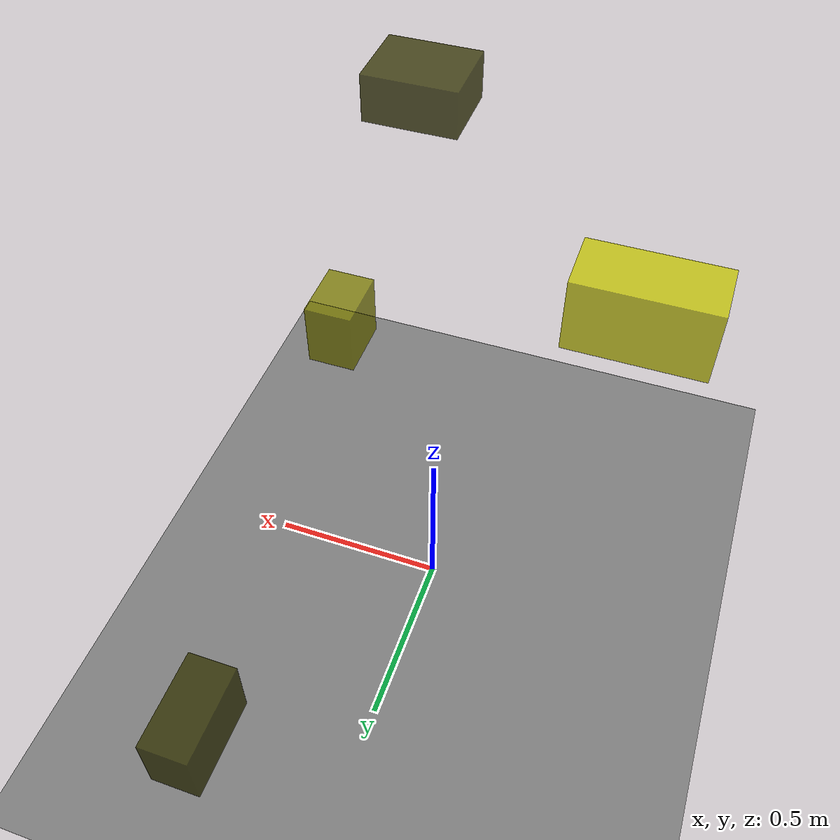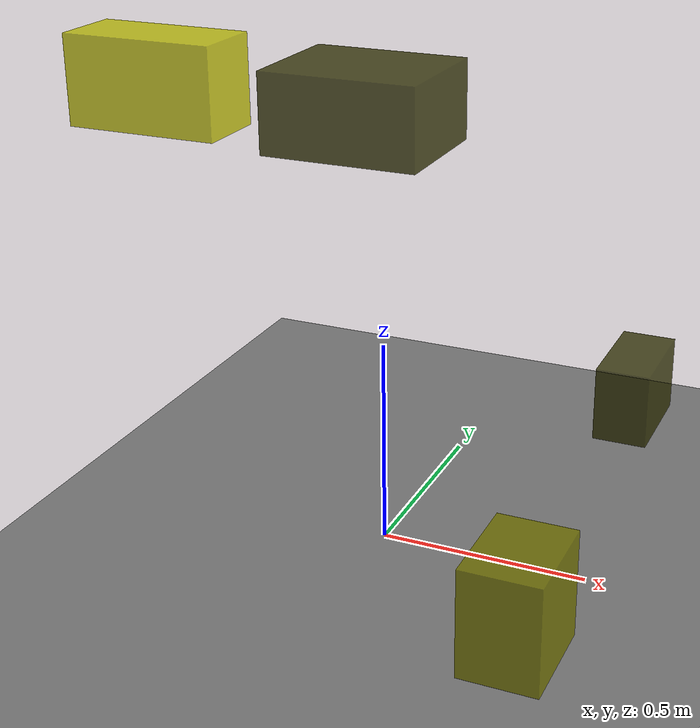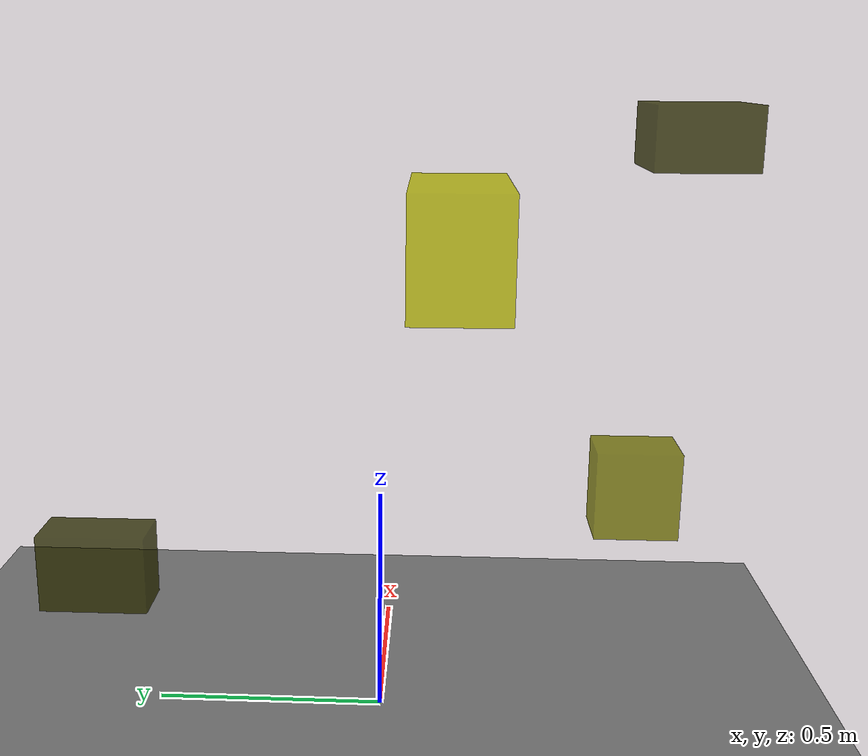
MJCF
<?xml version="1.0"?>
<mujoco model="obstacle_scene">
  <compiler angle="radian" coordinate="local"/>
  <option timestep="0.001" gravity="0 0 -9.81"/>

  <asset>
    <material name="obstacle_mat" rgba="0.8 0.8 0.0 0.8"/>
    <material name="ground_mat" rgba="0.5 0.5 0.5 1"/>
  </asset>

  <worldbody>
    <!-- Ground plane -->
    <geom name="ground" type="plane" size="3 3 0.1" material="ground_mat"/>

    <!-- Obstacles -->
    <body name="obstacle_0" pos="0.409108 0.752729 0.141437">
      <geom name="obs_0" type="box" size="0.072012 0.139157 0.101098" rgba="0.2 0.2 0.0 0.8"/>
    </body>
    <body name="obstacle_1" pos="0.545942 -0.631179 0.334785">
      <geom name="obs_1" type="box" size="0.080921 0.106769 0.114252" rgba="0.5 0.5 0.0 0.8"/>
    </body>
    <body name="obstacle_2" pos="-0.461193 -0.148853 1.107075">
      <geom name="obs_2" type="box" size="0.176545 0.083566 0.101551" rgba="0.8 0.8 0.0 0.8"/>
    </body>
    <body name="obstacle_3" pos="0.269897 -0.672887 1.243106">
      <geom name="obs_3" type="box" size="0.136067 0.110977 0.069075" rgba="0.2 0.2 0.0 0.8"/>
    </body>
  </worldbody>
</mujoco>
